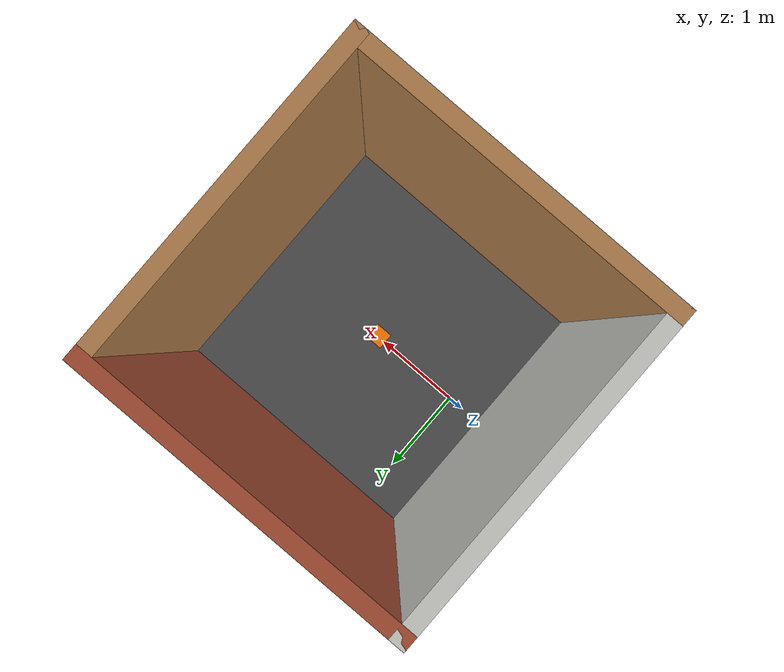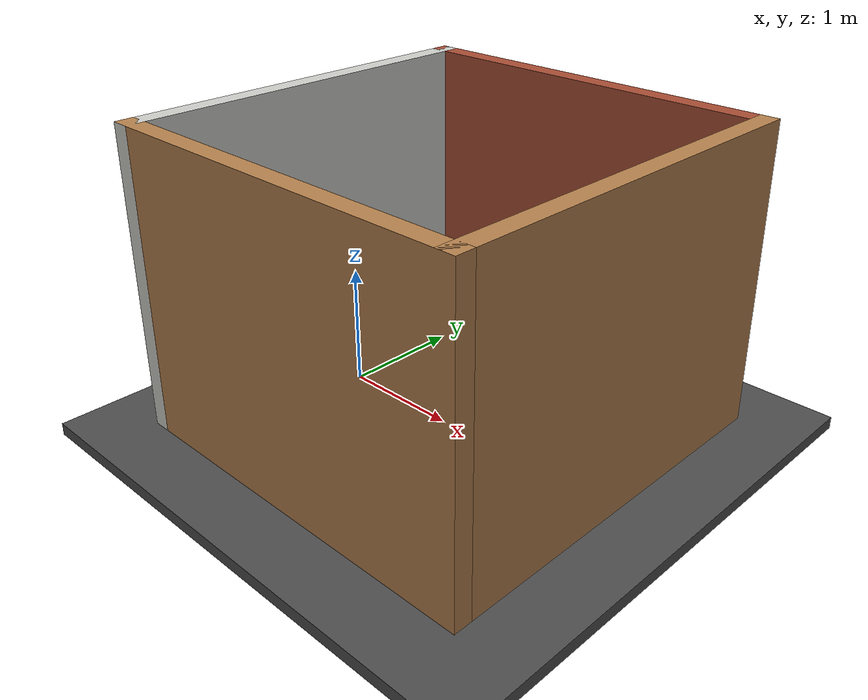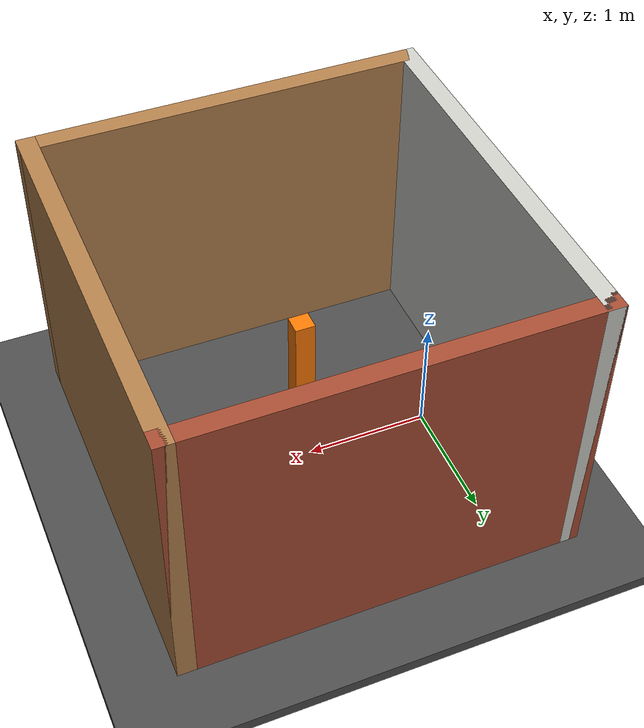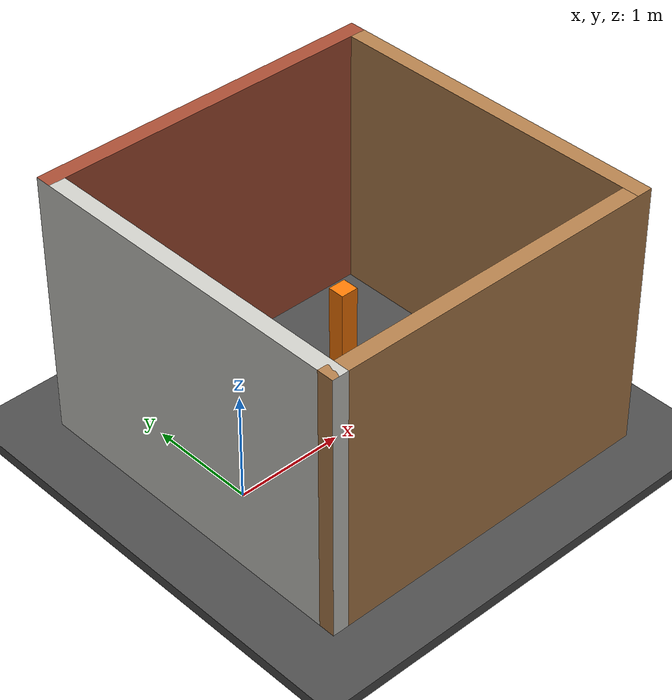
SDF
<sdf version="1.6">
 <world name="default">
  <light name="sun" type="directional">
   <pose>0 0 10 0 -0 0</pose>
   <diffuse>0.8 0.8 0.8 1</diffuse>
   <specular>0.1 0.1 0.1 1</specular>
   <attenuation>
    <range>1000</range>
    <constant>0.9</constant>
    <linear>0.01</linear>
    <quadratic>0.001</quadratic>
   </attenuation>
   <direction>-0.5 0.5 -1</direction>
  </light>
  <gravity>0 0 -9.8</gravity>
  <magnetic_field>6e-06 2.3e-05 -4.2e-05</magnetic_field>
  <atmosphere type="adiabatic"/>
  <physics name="default_physics" default="0" type="ode">
   <max_step_size>0.001</max_step_size>
   <real_time_factor>1</real_time_factor>
   <real_time_update_rate>1000</real_time_update_rate>
  </physics>
  <scene><ambient>0.4 0.4 0.4 1</ambient><background>0.7 0.7 0.7 1</background><shadows>1</shadows></scene>
  <spherical_coordinates>
   <surface_model>EARTH_WGS84</surface_model>
   <latitude_deg>0</latitude_deg>
   <longitude_deg>0</longitude_deg>
   <elevation>0</elevation>
   <heading_deg>0</heading_deg>
  </spherical_coordinates>
  <model name="Model_stand">
   <pose>1.07794 -0.0088 0 0 -0 0</pose>
   <link name="Wall_12">
    <collision name="Wall_12_Collision">
     <geometry><box><size>0.16 0.15 1.5</size></box></geometry>
     <pose>0 0 0.75 0 -0 0</pose>
    </collision>
    <visual name="Wall_12_Visual">
     <pose>0 0 0.75 0 -0 0</pose>
     <geometry><box><size>0.16 0.15 1.5</size></box></geometry>
     <material>
      <script><uri>file://media/materials/scripts/gazebo.material</uri><name>Gazebo/Grey</name></script>
      <ambient>0.996078 0.47451 0.0196078 1</ambient>
     </material>
     <meta><layer>0</layer></meta>
    </visual>
   </link>
   <static>1</static>
  </model>
  <model name="asphalt_plane">
   <static>1</static>
   <link name="link">
    <collision name="collision"><geometry><box><size>20 20 0.1</size></box></geometry></collision>
    <visual name="visual">
     <cast_shadows>0</cast_shadows>
     <geometry><box><size>20 20 0.1</size></box></geometry>
     <material>
      <script>
       <uri>model://asphalt_plane/materials/scripts</uri>
       <uri>model://asphalt_plane/materials/textures</uri>
       <name>vrc/asphalt</name>
      </script>
     </material>
    </visual>
   </link>
  </model>
  <model name="cage">
   <link name="Wall_5">
    <pose>0 -1.55 0 0 -0 3.14159</pose>
    <visual name="Wall_5_Visual">
     <pose>0 0 1.25 0 -0 0</pose>
     <geometry><box><size>3.25 0.15 2.5</size></box></geometry>
     <material>
      <script><uri>file://media/materials/scripts/gazebo.material</uri><name>Gazebo/Wood</name></script>
      <ambient>1 1 1 1</ambient>
      <diffuse>1 1 1 1</diffuse>
      <specular>0.2 0.2 0.2 1</specular>
      <emissive>0 0 0 1</emissive>
     </material>
     <meta><layer>0</layer></meta>
    </visual>
    <collision name="Wall_5_Collision">
     <pose>0 0 1.25 0 -0 0</pose>
     <geometry><box><size>3.25 0.15 2.5</size></box></geometry>
     <surface>
      <friction>
       <ode><mu>1</mu><mu2>1</mu2><fdir1>0 0 0</fdir1><slip1>0</slip1><slip2>0</slip2></ode>
       <torsional>
        <coefficient>1</coefficient>
        <patch_radius>0</patch_radius>
        <surface_radius>0</surface_radius>
        <use_patch_radius>1</use_patch_radius>
        <ode><slip>0</slip></ode>
       </torsional>
      </friction>
      <bounce><restitution_coefficient>0</restitution_coefficient><threshold>1e+06</threshold></bounce>
      <contact>
       <collide_without_contact>0</collide_without_contact>
       <collide_without_contact_bitmask>1</collide_without_contact_bitmask>
       <collide_bitmask>1</collide_bitmask>
       <ode>
        <soft_cfm>0</soft_cfm>
        <soft_erp>0.2</soft_erp>
        <kp>1e+13</kp>
        <kd>1</kd>
        <max_vel>0.01</max_vel>
        <min_depth>0</min_depth>
       </ode>
       <bullet>
        <split_impulse>1</split_impulse>
        <split_impulse_penetration_threshold>-0.01</split_impulse_penetration_threshold>
        <soft_cfm>0</soft_cfm>
        <soft_erp>0.2</soft_erp>
        <kp>1e+13</kp>
        <kd>1</kd>
       </bullet>
      </contact>
     </surface>
    </collision>
   </link>
   <link name="Wall_6">
    <pose>-1.55 0 0 0 -0 1.5708</pose>
    <visual name="Wall_6_Visual">
     <pose>0 0 1.25 0 -0 0</pose>
     <geometry><box><size>3.25 0.15 2.5</size></box></geometry>
     <material>
      <script><uri>file://media/materials/scripts/gazebo.material</uri><name>Gazebo/CeilingTiled</name></script>
      <ambient>1 1 1 1</ambient>
      <diffuse>1 1 1 1</diffuse>
      <specular>0 0 0 1</specular>
      <emissive>0 0 0 1</emissive>
     </material>
     <meta><layer>0</layer></meta>
    </visual>
    <collision name="Wall_6_Collision">
     <pose>0 0 1.25 0 -0 0</pose>
     <geometry><box><size>3.25 0.15 2.5</size></box></geometry>
     <surface>
      <friction>
       <ode><mu>1</mu><mu2>1</mu2><fdir1>0 0 0</fdir1><slip1>0</slip1><slip2>0</slip2></ode>
       <torsional>
        <coefficient>1</coefficient>
        <patch_radius>0</patch_radius>
        <surface_radius>0</surface_radius>
        <use_patch_radius>1</use_patch_radius>
        <ode><slip>0</slip></ode>
       </torsional>
      </friction>
      <bounce><restitution_coefficient>0</restitution_coefficient><threshold>1e+06</threshold></bounce>
      <contact>
       <collide_without_contact>0</collide_without_contact>
       <collide_without_contact_bitmask>1</collide_without_contact_bitmask>
       <collide_bitmask>1</collide_bitmask>
       <ode>
        <soft_cfm>0</soft_cfm>
        <soft_erp>0.2</soft_erp>
        <kp>1e+13</kp>
        <kd>1</kd>
        <max_vel>0.01</max_vel>
        <min_depth>0</min_depth>
       </ode>
       <bullet>
        <split_impulse>1</split_impulse>
        <split_impulse_penetration_threshold>-0.01</split_impulse_penetration_threshold>
        <soft_cfm>0</soft_cfm>
        <soft_erp>0.2</soft_erp>
        <kp>1e+13</kp>
        <kd>1</kd>
       </bullet>
      </contact>
     </surface>
    </collision>
   </link>
   <link name="Wall_7">
    <pose>0 1.55 0 0 -0 0</pose>
    <visual name="Wall_7_Visual">
     <pose>0 0 1.25 0 -0 0</pose>
     <geometry><box><size>3.25 0.15 2.5</size></box></geometry>
     <material>
      <script><uri>file://media/materials/scripts/gazebo.material</uri><name>Gazebo/Bricks</name></script>
      <ambient>1 1 1 1</ambient>
      <diffuse>1 1 1 1</diffuse>
      <specular>0.2 0.2 0.2 1</specular>
      <emissive>0 0 0 1</emissive>
     </material>
     <meta><layer>0</layer></meta>
    </visual>
    <collision name="Wall_7_Collision">
     <pose>0 0 1.25 0 -0 0</pose>
     <geometry><box><size>3.25 0.15 2.5</size></box></geometry>
     <surface>
      <friction>
       <ode><mu>1</mu><mu2>1</mu2><fdir1>0 0 0</fdir1><slip1>0</slip1><slip2>0</slip2></ode>
       <torsional>
        <coefficient>1</coefficient>
        <patch_radius>0</patch_radius>
        <surface_radius>0</surface_radius>
        <use_patch_radius>1</use_patch_radius>
        <ode><slip>0</slip></ode>
       </torsional>
      </friction>
      <bounce><restitution_coefficient>0</restitution_coefficient><threshold>1e+06</threshold></bounce>
      <contact>
       <collide_without_contact>0</collide_without_contact>
       <collide_without_contact_bitmask>1</collide_without_contact_bitmask>
       <collide_bitmask>1</collide_bitmask>
       <ode>
        <soft_cfm>0</soft_cfm>
        <soft_erp>0.2</soft_erp>
        <kp>1e+13</kp>
        <kd>1</kd>
        <max_vel>0.01</max_vel>
        <min_depth>0</min_depth>
       </ode>
       <bullet>
        <split_impulse>1</split_impulse>
        <split_impulse_penetration_threshold>-0.01</split_impulse_penetration_threshold>
        <soft_cfm>0</soft_cfm>
        <soft_erp>0.2</soft_erp>
        <kp>1e+13</kp>
        <kd>1</kd>
       </bullet>
      </contact>
     </surface>
    </collision>
   </link>
   <link name="Wall_8">
    <pose>1.55 0 0 0 0 -1.5708</pose>
    <inertial>
     <mass>1</mass>
     <inertia><ixx>1</ixx><ixy>0</ixy><ixz>0</ixz><iyy>1</iyy><iyz>0</iyz><izz>1</izz></inertia>
    </inertial>
    <visual name="Wall_8_Visual">
     <pose>0 0 1.25 0 -0 0</pose>
     <geometry><box><size>3.25 0.15 2.5</size></box></geometry>
     <material>
      <script><uri>file://media/materials/scripts/gazebo.material</uri><name>Gazebo/Wood</name></script>
      <ambient>0.435 0.796 0.675 1</ambient>
      <diffuse>0.7 0.7 0.7 1</diffuse>
      <specular>0.01 0.01 0.01 1</specular>
      <emissive>0 0 0 1</emissive>
      <shader type="vertex"><normal_map>__default__</normal_map></shader>
     </material>
     <meta><layer>0</layer></meta>
    </visual>
    <collision name="Wall_8_Collision">
     <pose>0 0 1.25 0 -0 0</pose>
     <geometry><box><size>3.25 0.15 2.5</size></box></geometry>
     <surface>
      <friction>
       <ode><mu>1</mu><mu2>1</mu2><fdir1>0 0 0</fdir1><slip1>0</slip1><slip2>0</slip2></ode>
       <torsional>
        <coefficient>1</coefficient>
        <patch_radius>0</patch_radius>
        <surface_radius>0</surface_radius>
        <use_patch_radius>1</use_patch_radius>
        <ode><slip>0</slip></ode>
       </torsional>
      </friction>
      <bounce><restitution_coefficient>0</restitution_coefficient><threshold>1e+06</threshold></bounce>
      <contact>
       <collide_without_contact>0</collide_without_contact>
       <collide_without_contact_bitmask>1</collide_without_contact_bitmask>
       <collide_bitmask>1</collide_bitmask>
       <ode>
        <soft_cfm>0</soft_cfm>
        <soft_erp>0.2</soft_erp>
        <kp>1e+13</kp>
        <kd>1</kd>
        <max_vel>0.01</max_vel>
        <min_depth>0</min_depth>
       </ode>
       <bullet>
        <split_impulse>1</split_impulse>
        <split_impulse_penetration_threshold>-0.01</split_impulse_penetration_threshold>
        <soft_cfm>0</soft_cfm>
        <soft_erp>0.2</soft_erp>
        <kp>1e+13</kp>
        <kd>1</kd>
       </bullet>
      </contact>
     </surface>
    </collision>
   </link>
   <static>1</static>
   <pose>1.07298 -0.01336 0 0 -0 0</pose>
  </model>
 </world>
</sdf>
